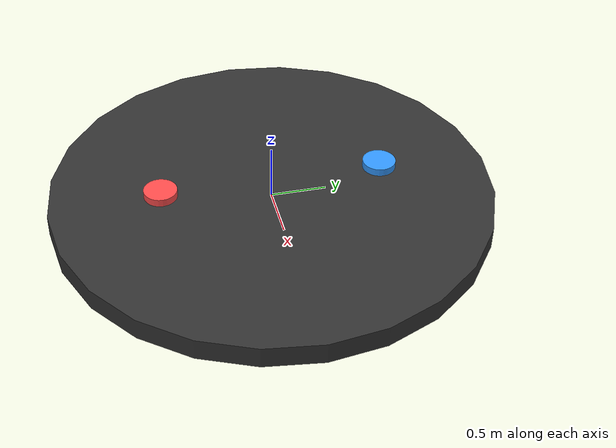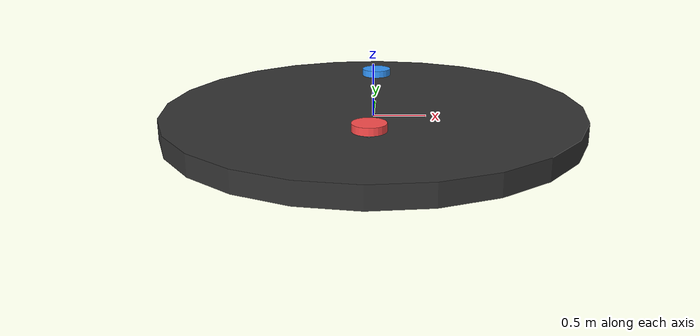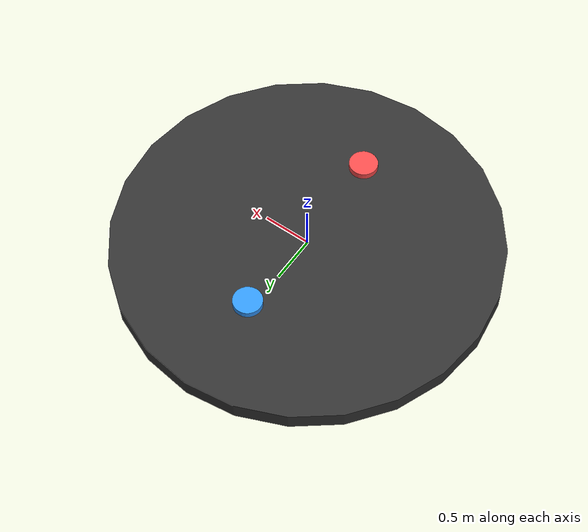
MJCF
<mujoco model="sumo">
    <option iterations="4" ls_iterations="8" solver="Newton" timestep="0.005">
        <flag eulerdamp="disable"/>
    </option>
    <default>
        <motor ctrllimited="true" ctrlrange="-1 1"/>
        <geom density="500"/>
        <joint damping="0.1" armature="0.1"/>
    </default>
    <asset>
        <texture name="skybox" type="skybox" builtin="gradient" rgb1=".4 .6 .8" rgb2="0 0 0"
               width="800" height="800" mark="random" markrgb="1 1 1"/>
        <material name="sky" texture="skybox" emission="1"/>
        <material name="roomba1_color" rgba="0.2 0.6 1 1"/>   <!-- Blue -->
        <material name="roomba2_color" rgba="1 0.3 0.3 1"/>   <!-- Red -->
        <material name="floor_color" rgba="0.2 0.2 0.2 1"/>
    </asset>
    <custom>
        <numeric data="8" name="max_contact_points"/>
        <numeric data="8" name="max_geom_pairs"/>
    </custom>
    <worldbody>
        <geom name="floor" type="cylinder" size="2 0.1" pos="0 0 0" material="floor_color"/>
        <light name="light" pos="0 0 7" dir="0 0 -1" mode="fixed"/>
        <camera name="side" pos="-4 0 2" xyaxes="0 -1 0 1 0 2" mode="fixed"/>
        <body name="roomba1" pos="0 1 0.2">
            <freejoint name="root1"/>
            <geom name="roomba1" type="cylinder" size="0.15 0.035" pos="0 0 0" material="roomba1_color"/>
            <body name="lwheel1" pos="0.09 0 -0.02">
                <joint name="lwheel1" type="hinge" axis="1 0 0"/>
                <geom type="cylinder" size="0.04 0.02" quat="0 0.7071 0 0.7071"/>
            </body>
            <body name="rwheel1" pos="-0.09 0 -0.02">
                <joint name="rwheel1" type="hinge" axis="1 0 0"/>
                <geom type="cylinder" size="0.04 0.02" quat="0 0.7071 0 0.7071"/>
            </body>
            <body name="bwheel1" pos="0 0.09 -0.02">
                <geom type="sphere" size="0.04" friction="0 0 0"/>
            </body>
        </body>
        <body name="roomba2" pos="0 -1 0.2" quat="0 0 0 1">
            <freejoint name="root2"/>
            <geom name="roomba2" type="cylinder" size="0.15 0.035" pos="0 0 0" material="roomba2_color"/>
            <body name="lwheel2" pos="0.09 0 -0.02">
                <joint name="lwheel2" type="hinge" axis="1 0 0"/>
                <geom type="cylinder" size="0.04 0.02" quat="0 0.7071 0 0.7071"/>
            </body>
            <body name="rwheel2" pos="-0.09 0 -0.02">
                <joint name="rwheel2" type="hinge" axis="1 0 0"/>
                <geom type="cylinder" size="0.04 0.02" quat="0 0.7071 0 0.7071"/>
            </body>
            <body name="bwheel2" pos="0 0.09 -0.02">
                <geom type="sphere" size="0.04" friction="0 0 0"/>
            </body>
        </body>
    </worldbody>

    <contact>
        <exclude body1="roomba1" body2="lwheel1"/>
        <exclude body1="roomba1" body2="rwheel1"/>
        <exclude body1="roomba1" body2="bwheel1"/>
        <exclude body1="roomba2" body2="lwheel2"/>
        <exclude body1="roomba2" body2="rwheel2"/>
        <exclude body1="roomba2" body2="bwheel2"/>
    </contact>

    <actuator>
        <motor name="lwheel1" joint="lwheel1" gear="1"/>
        <motor name="rwheel1" joint="rwheel1" gear="1"/>
        <motor name="lwheel2" joint="lwheel2" gear="1"/>
        <motor name="rwheel2" joint="rwheel2" gear="1"/>
    </actuator>
</mujoco>
